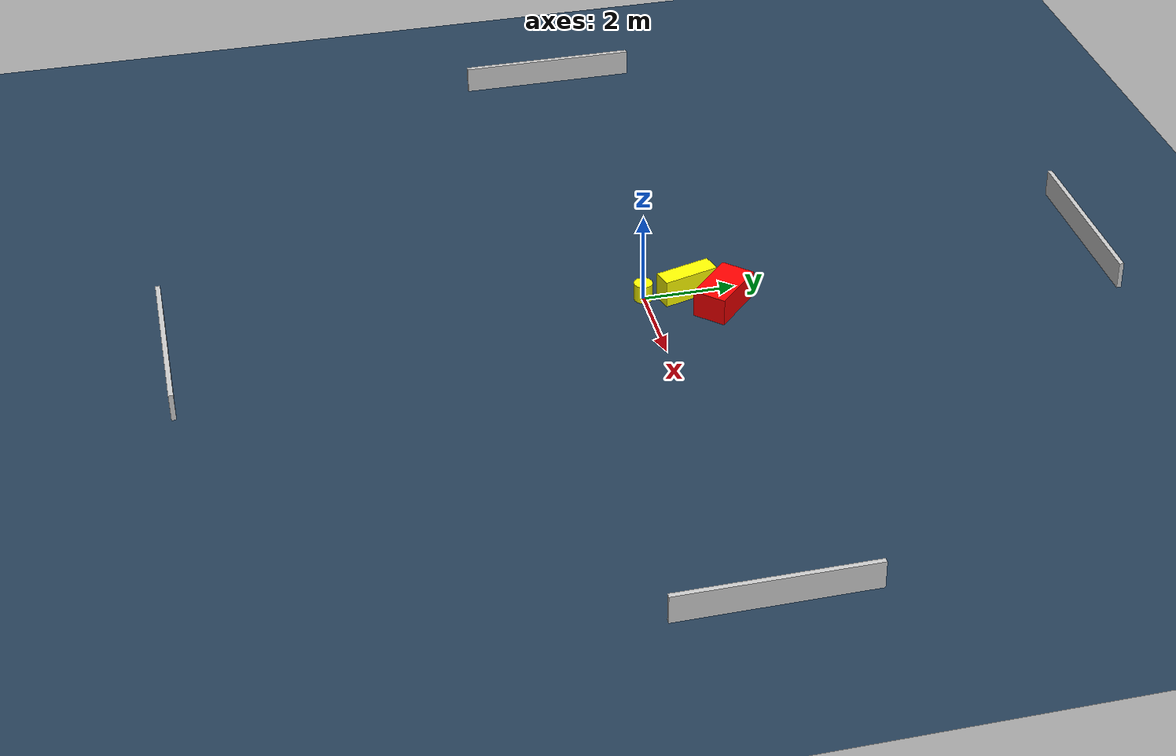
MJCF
<?xml version="1.0" ?>
<mujoco model="generated_environment">
  <option timestep="0.01" integrator="RK4" cone="elliptic"/>
  <default>
    <geom density="1"/>
  </default>
  <asset>
    <texture builtin="gradient" height="3072" name="skybox" rgb1="0.3 0.5 0.7" rgb2="0 0 0" type="skybox" width="512"/>
    <texture builtin="checker" height="300" name="groundplane" rgb1="0.2 0.3 0.4" rgb2="0.1 0.2 0.3" type="2d" width="300"/>
    <material name="groundplane" reflectance="0.2" texrepeat="5 5" texture="groundplane"/>
  </asset>
  <worldbody>
    <light dir="0 0 -1" directional="true" pos="0 0 1.5"/>
    <geom condim="3" friction="0.5 0.005 0.001" material="groundplane" name="floor" pos="0 0 0" size="0 0 0.05" type="plane"/>
    <body name="walls">
      <geom name="wall_1" condim="4" pos="-10.0 0.0 0.3" rgba="0.800000011920929 0.800000011920929 0.800000011920929 1.0" size="0.05 2.0 0.3" type="box"/>
      <geom name="wall_2" condim="4" pos="10.0 0.0 0.3" rgba="0.800000011920929 0.800000011920929 0.800000011920929 1.0" size="0.05 2.0 0.3" type="box"/>
      <geom name="wall_3" condim="4" pos="0.0 -10.0 0.3" rgba="0.800000011920929 0.800000011920929 0.800000011920929 1.0" size="2.0 0.05 0.3" type="box"/>
      <geom name="wall_4" condim="4" pos="0.0 10.0 0.3" rgba="0.800000011920929 0.800000011920929 0.800000011920929 1.0" size="2.0 0.05 0.3" type="box"/>
    </body>
    <body name="robot">
      <joint name="joint_x" type="slide" pos="0 0 0" axis="1 0 0"/>
      <joint name="joint_y" type="slide" pos="0 0 0" axis="0 1 0"/>
      <geom name="robot" type="cylinder" pos="0.0 0.0 0.2" size="0.2 0.2 0.0" mass="5.0" friction="1.0 0.005 0.0001" condim="4" rgba="1.0 1.0 0.0 1.0"/>
    </body>
    <body name="obstacle_1_movable">
      <geom name="obstacle_1_movable" condim="4" pos="0.05924977115922825 0.938342874066814 0.3" euler="0 0 105.97523747826415" friction="0.0 0.005 0.001" rgba="1.0 1.0 0.0 1.0" size="0.6181936067860614 0.20927628725033295 0.3" type="box" mass="0.1"/>
      <joint type="free"/>
    </body>
    <body name="obstacle_2_static">
      <geom name="obstacle_2_static" condim="4" pos="0.6514168154138303 1.5859936767230969 0.3" euler="0 0 316.125053176968" friction="0.0 0.005 0.001" rgba="1.0 0.0 0.0 1.0" size="0.6465177227515408 0.3708067114808202 0.3" type="box"/>
    </body>
  </worldbody>
  <actuator>
    <motor name="actuator_x" joint="joint_x" gear="1" ctrlrange="-1 1"/>
    <motor name="actuator_y" joint="joint_y" gear="1" ctrlrange="-1 1"/>
  </actuator>
</mujoco>
